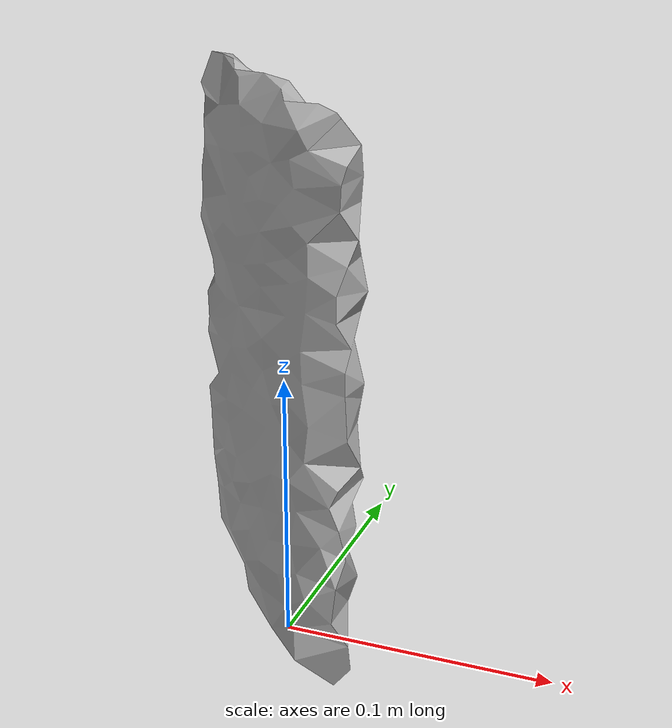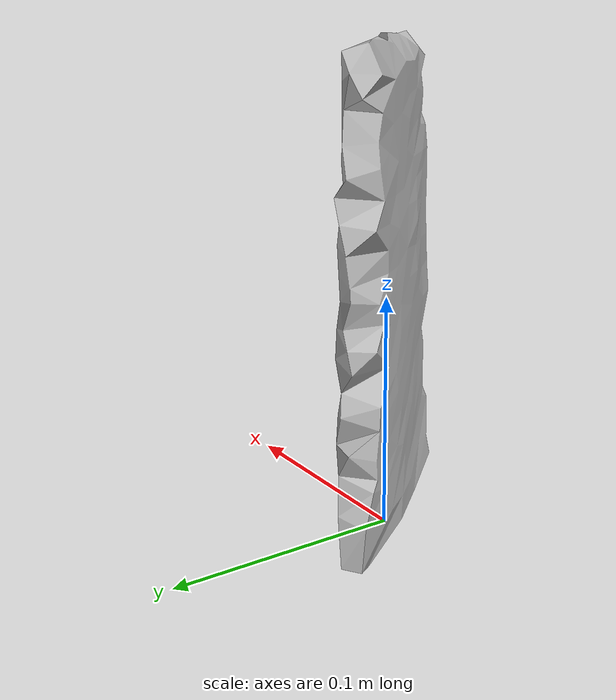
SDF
<?xml version="1.0" ?>
<sdf version="1.4">
  <model name="book">
    <link name="book_link">
      <inertial>
        <pose>0 0 0 0 0 0</pose>
        <mass>0.08</mass>
      </inertial>

      <visual name="book_visual">
        <pose>0 0 0 0 0 0</pose>
        <material>
          <script>
            <uri>model://book/materials/scripts</uri>
            <uri>model://book/materials/textures</uri>
            <name>book</name>
          </script>
        </material>
        <geometry>
          <mesh>
            <uri>model://book/meshes/book.dae</uri>
          </mesh>
        </geometry>
      </visual>

      <collision name="book_collision">
        <pose>0 0 0 0 0 0</pose>
        <geometry>
          <mesh>
            <uri>model://book/meshes/book.dae</uri>
          </mesh>
        </geometry>
        <surface>
          <friction>
            <ode>
              <mu>0.8</mu>
              <mu2>0.8</mu2>
            </ode>
          </friction>
        </surface>
      </collision>

    </link>
  </model>
</sdf>
